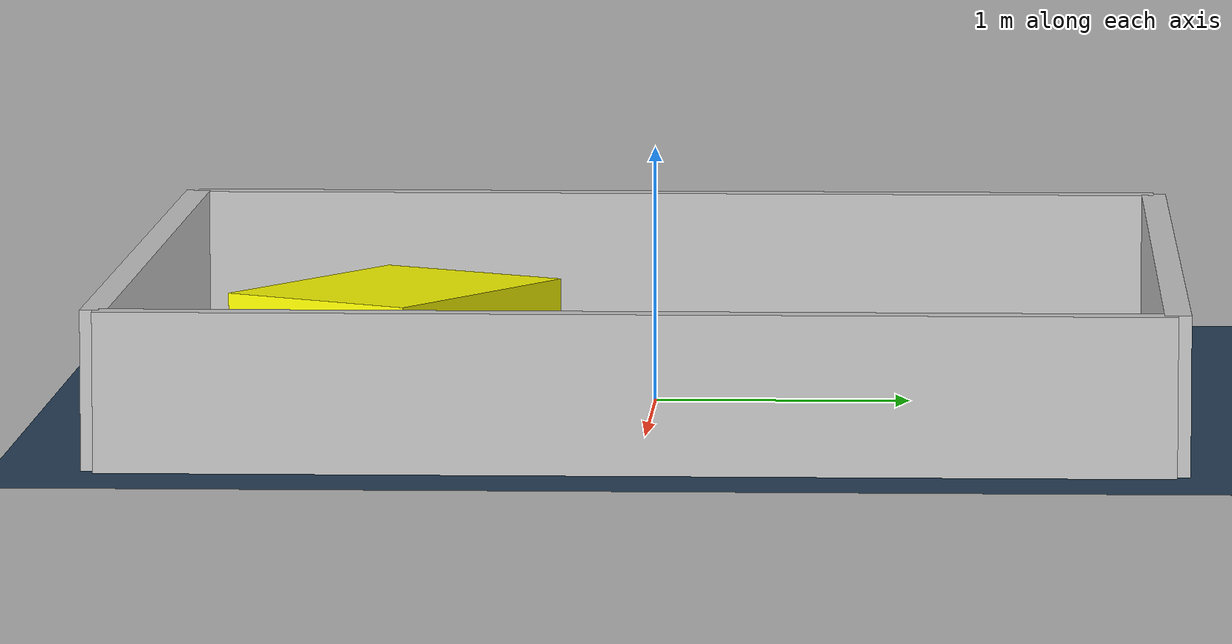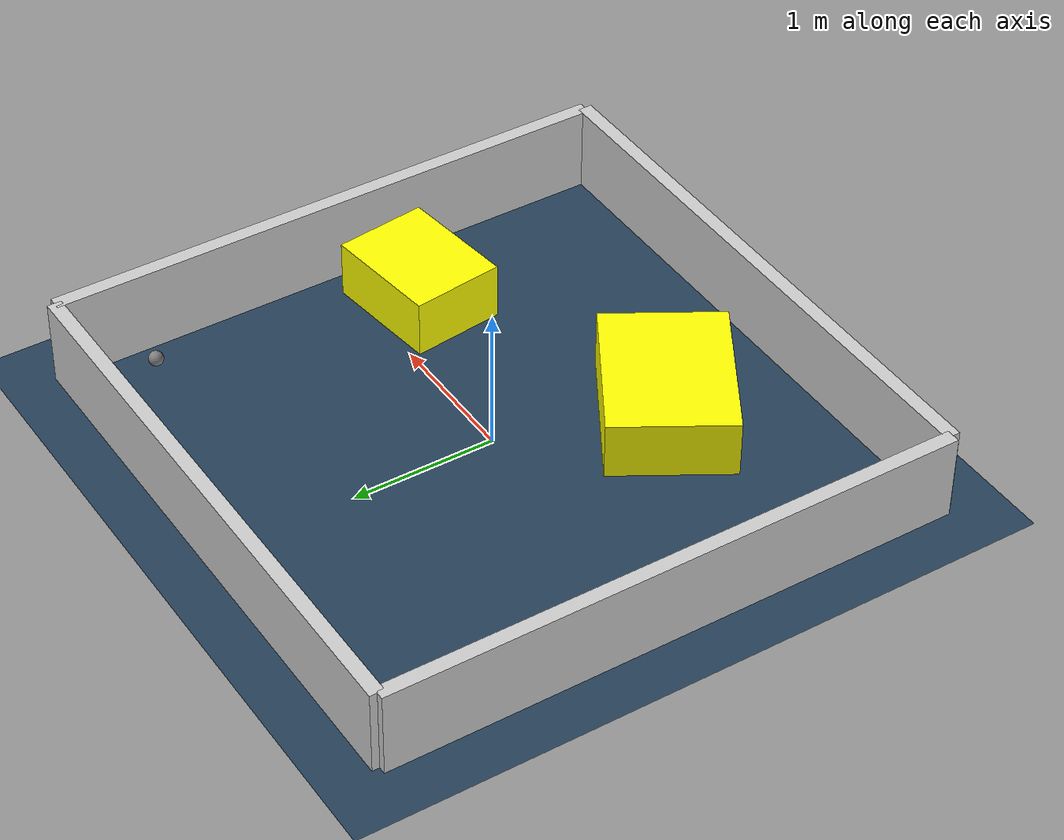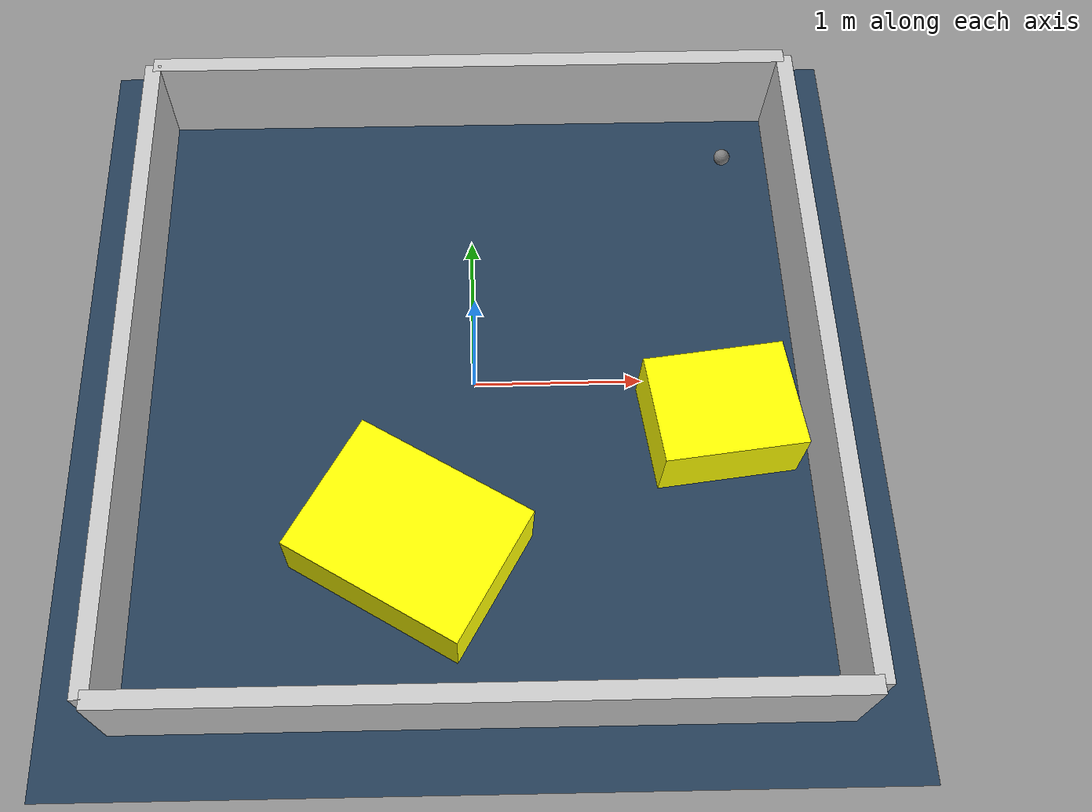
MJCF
<?xml version="1.0" ?>
<mujoco model="generated_environment">
  <option timestep="0.01" integrator="RK4" cone="elliptic"/>
  <default>
    <geom density="1"/>
  </default>
  <asset>
    <texture builtin="gradient" height="3072" rgb1="0.3 0.5 0.7" rgb2="0 0 0" type="skybox" width="512"/>
    <texture builtin="checker" height="300" mark="edge" markrgb="0.8 0.8 0.8" name="groundplane" rgb1="0.2 0.3 0.4" rgb2="0.1 0.2 0.3" type="2d" width="300"/>
    <material name="groundplane" reflectance="0.2" texrepeat="5 5" texture="groundplane" texuniform="true"/>
    <material name="robot" rgba="0.0 1.0 0.0 1"/>
  </asset>
  <worldbody>
    <light dir="0 0 -1" directional="true" pos="0 0 1.5"/>
    <geom condim="4" friction="1.0 0.005 0.001" material="groundplane" name="floor" size="0 0 0.05" type="plane"/>
    <body name="walls">
      <geom name="wall_1" condim="4" pos="-2.0 0.0 0.3" rgba="0.800000011920929 0.800000011920929 0.800000011920929 1.0" size="0.05 2.0 0.3" type="box"/>
      <geom name="wall_2" condim="4" pos="2.0 0.0 0.3" rgba="0.800000011920929 0.800000011920929 0.800000011920929 1.0" size="0.05 2.0 0.3" type="box"/>
      <geom name="wall_3" condim="4" pos="0.0 -2.0 0.3" rgba="0.800000011920929 0.800000011920929 0.800000011920929 1.0" size="2.0 0.05 0.3" type="box"/>
      <geom name="wall_4" condim="4" pos="0.0 2.0 0.3" rgba="0.800000011920929 0.800000011920929 0.800000011920929 1.0" size="2.0 0.05 0.3" type="box"/>
    </body>
    <body name="robot">
      <joint name="joint_x" type="slide" pos="0 0 0" axis="1 0 0"/>
      <joint name="joint_y" type="slide" pos="0 0 0" axis="0 1 0"/>
      <geom name="robot" type="sphere" pos="1.6211289680990482 1.507647424668174 0.2" size="0.05" mass="5." friction="1.0 0.005 0.0001" condim="4"/>
      <site name="sensor_ball"/>
    </body>
    <body name="obstacle_1_movable">
      <geom name="obstacle_1_movable" condim="4" pos="-0.38479131296641844 -1.053913458159633 0.2" euler="0 0 59.10727801551982" friction="1.0 0.005 0.001" rgba="1 1 0 1" size="0.42140019367486137 0.5528771407317572 0.2" type="box" mass="0.1"/>
      <joint type="free"/>
    </body>
    <body name="obstacle_2_movable">
      <geom name="obstacle_2_movable" condim="4" pos="1.4174614138042987 -0.3242968045502903 0.2" euler="0 0 187.0215582540136" friction="1.0 0.005 0.001" rgba="1 1 0 1" size="0.4125261499169839 0.323158719027271 0.2" type="box" mass="0.1"/>
      <joint type="free"/>
    </body>
  </worldbody>
  <actuator>
    <motor name="actuator_x" joint="joint_x" gear="1" ctrlrange="-1 1"/>
    <motor name="actuator_y" joint="joint_y" gear="1" ctrlrange="-1 1"/>
  </actuator>
</mujoco>
